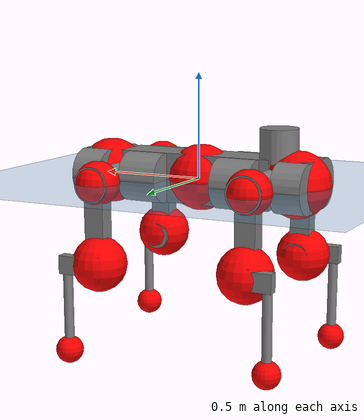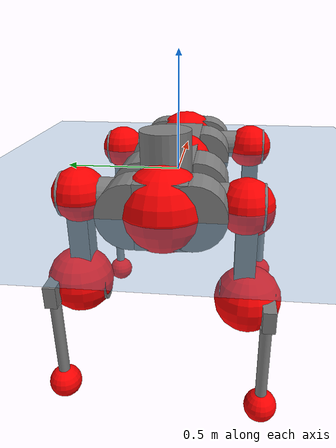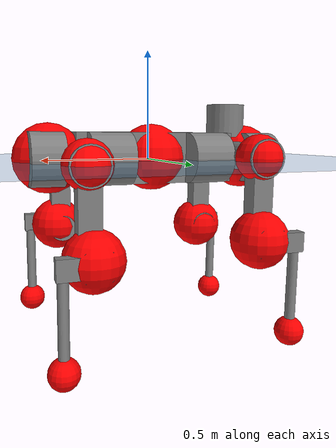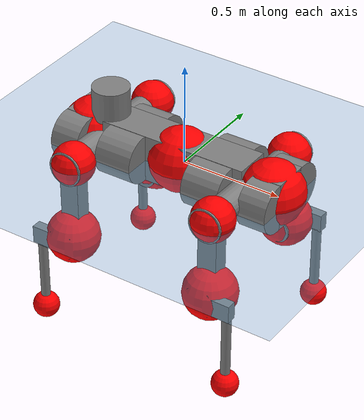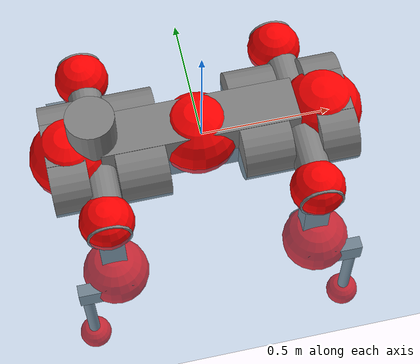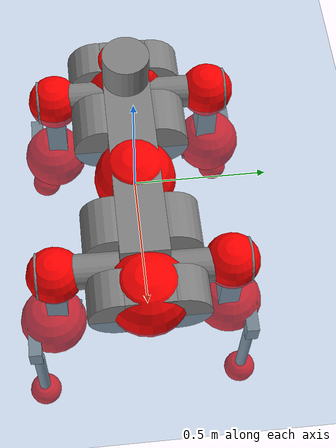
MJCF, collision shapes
<mujoco model="anymal_c">
  <compiler angle="radian" assetdir="assets" balanceinertia="true" inertiafromgeom="false"/>

  <option timestep="0.005" density="1.2" viscosity="2e-05"/>

  <size nkey="1"/>

  <visual>
    <quality shadowsize="8192"/>
    <map shadowclip="0.5"/>
  </visual>

  <default>
    <default class="/">
      <material specular="0" shininess="0.25"/>
      <geom contype="0" conaffinity="0" group="1" solref="-1000 -80"/>
      <site size="0.01 0.005 0.005" group="5"/>
      <general forcelimited="true" forcerange="-80 80" biastype="affine" gainprm="80" biasprm="0 -80 -2"/>
      <default class="anymal_c">
        <joint armature="0.01" damping="0.01" frictionloss="0.1"/>
        <default class="visual">
          <geom type="mesh" group="2"/>
          <default class="visual_zflip"/>
        </default>
        <default class="collision">
          <geom type="cylinder" group="3"/>
          <default class="foot">
            <geom size="0.03 0 0" type="sphere" condim="6" priority="1" friction="0.8 0.02 0.01" solimp="0.015 1 0.03"/>
          </default>
        </default>
      </default>
      <default class="reward_collision_sphere">
        <geom group="5" rgba="1 0 0 1"/>
      </default>
    </default>
  </default>

  <asset>
    <texture type="skybox" colorspace="auto" name="//unnamed_texture_0" builtin="gradient" rgb1="0.95 0.95 0.95" rgb2="0.95 0.95 0.95" width="100" height="600"/>
    <texture type="2d" colorspace="auto" name="texplane" builtin="checker" rgb1="0.345 0.575 0.748" rgb2="0.345 0.575 0.748" markrgb="1 1 1" width="512" height="512"/>
    <texture type="2d" colorspace="linear" name="base" file="base.png"/>
    <texture type="2d" colorspace="linear" name="top_shell" file="top_shell.png"/>
    <texture type="2d" colorspace="linear" name="bottom_shell" file="bottom_shell.png"/>
    <texture type="2d" colorspace="linear" name="remote" file="remote.png"/>
    <texture type="2d" colorspace="linear" name="hatch" file="hatch.png"/>
    <texture type="2d" colorspace="linear" name="handle" file="handle.png"/>
    <texture type="2d" colorspace="linear" name="face" file="face.png"/>
    <texture type="2d" colorspace="linear" name="battery" file="battery.png"/>
    <texture type="2d" colorspace="linear" name="lidar_cage" file="lidar_cage.png"/>
    <texture type="2d" colorspace="linear" name="depth_camera" file="depth_camera.png"/>
    <texture type="2d" colorspace="linear" name="wide_angle_camera" file="wide_angle_camera.png"/>
    <texture type="2d" colorspace="linear" name="lidar" file="lidar.png"/>
    <texture type="2d" colorspace="linear" name="drive" file="drive.png"/>
    <texture type="2d" colorspace="linear" name="hip_l" file="hip_l.png"/>
    <texture type="2d" colorspace="linear" name="shank_l" file="shank_l.png"/>
    <texture type="2d" colorspace="linear" name="foot" file="foot.png"/>
    <texture type="2d" colorspace="linear" name="thigh" file="thigh.png"/>
    <texture type="2d" colorspace="linear" name="shank_r" file="shank_r.png"/>
    <texture type="2d" colorspace="linear" name="hip_r" file="hip_r.png"/>
    <material name="MatPlane" class="/" texture="texplane" texuniform="true" texrepeat="2 2" specular="0.9" shininess="0.5"/>
    <material name="black_plastic" class="/" rgba="0.007 0.007 0.007 1"/>
    <material name="green" class="/" rgba="0.052 0.178 0.033 1"/>
    <material name="red" class="/" rgba="0.178 0.006 0.005 1"/>
    <material name="yellow" class="/" rgba="0.178 0.119 0.006 1"/>
    <material name="lwl" class="/" rgba="0.8 0.8 0.8 1"/>
    <material name="base" class="/" texture="base"/>
    <material name="top_shell" class="/" texture="top_shell"/>
    <material name="bottom_shell" class="/" texture="bottom_shell"/>
    <material name="hip_l" class="/" texture="hip_l"/>
    <material name="thigh" class="/" texture="thigh"/>
    <material name="shank_l" class="/" texture="shank_l"/>
    <material name="foot" class="/" texture="foot"/>
    <material name="hip_r" class="/" texture="hip_r"/>
    <material name="shank" class="/" texture="shank_r"/>
    <material name="hatch" class="/" texture="hatch"/>
    <material name="remote" class="/" texture="remote"/>
    <material name="handle" class="/" texture="handle"/>
    <material name="face" class="/" texture="face"/>
    <material name="depth_camera" class="/" texture="depth_camera"/>
    <material name="wide_angle_camera" class="/" texture="wide_angle_camera"/>
    <material name="battery" class="/" texture="battery"/>
    <material name="lidar_cage" class="/" texture="lidar_cage"/>
    <material name="lidar" class="/" texture="lidar"/>
    <material name="drive" class="/" texture="drive"/>
    <mesh name="base_0" class="/" file="base_0.obj"/>
    <mesh name="base_1" class="/" file="base_1.obj"/>
    <mesh name="base_2" class="/" file="base_2.obj"/>
    <mesh name="base_3" class="/" file="base_3.obj"/>
    <mesh name="base_4" class="/" file="base_4.obj"/>
    <mesh name="base_5" class="/" file="base_5.obj"/>
    <mesh name="top_shell" class="/" file="top_shell.obj"/>
    <mesh name="bottom_shell" class="/" file="bottom_shell.obj"/>
    <mesh name="remote" class="/" file="remote.obj"/>
    <mesh name="handle" class="/" file="handle.obj"/>
    <mesh name="face" class="/" file="face.obj"/>
    <mesh name="wide_angle_camera" class="/" file="wide_angle_camera.obj"/>
    <mesh name="depth_camera" class="/" file="depth_camera.obj"/>
    <mesh name="battery" class="/" file="battery.obj"/>
    <mesh name="lidar_cage" class="/" file="lidar_cage.obj"/>
    <mesh name="lidar" class="/" file="lidar.obj"/>
    <mesh name="drive" class="/" file="drive.obj"/>
    <mesh name="hip_l" class="/" file="hip_l.obj"/>
    <mesh name="thigh" class="/" file="thigh.obj"/>
    <mesh name="shank_l" class="/" file="shank_l.obj"/>
    <mesh name="foot" class="/" file="foot.obj"/>
    <mesh name="hip_r" class="/" file="hip_r.obj"/>
    <mesh name="hatch" class="/" file="hatch.obj"/>
    <mesh name="shank_r" class="/" file="shank_r.obj"/>
  </asset>

  <worldbody>
    <geom name="floor" class="/" size="100 100 0.125" type="plane" group="0" material="MatPlane"/>
    <light name="toplight_shadow" class="/" pos="0 0 5" dir="0.0990148 0.0990148 -0.990148" type="directional" ambient="0.04 0.04 0.04" diffuse="0.55 0.55 0.55" specular="0.12 0.12 0.12"/>
    <light name="toplight_fill" class="/" pos="0 0 5" dir="0.0990148 0.0990148 -0.990148" type="directional" castshadow="false" ambient="0.04 0.04 0.04" diffuse="0.3 0.3 0.3" specular="0.08 0.08 0.08"/>
    <body name="trunk" childclass="anymal_c" pos="-0.0164356 0.00218488 0.0087336" quat="0.999972 -0.00665586 -0.00296881 0.00172545">
      <inertial pos="0.0184199 -0.00841605 0.0702143" quat="0.485606 0.504948 0.494332 0.514637" mass="46.5378" diaginertia="0.842561 4.36399 0.716916"/>
      <joint name="//unnamed_joint_0" type="free" armature="0" damping="0" frictionloss="0"/>
      <geom name="//unnamed_geom_1" class="visual" material="green" mesh="base_0"/>
      <geom name="//unnamed_geom_2" class="visual" material="yellow" mesh="base_1"/>
      <geom name="//unnamed_geom_3" class="visual" material="red" mesh="base_2"/>
      <geom name="//unnamed_geom_4" class="visual" material="black_plastic" mesh="base_3"/>
      <geom name="//unnamed_geom_5" class="visual" material="lwl" mesh="base_4"/>
      <geom name="//unnamed_geom_6" class="visual" material="base" mesh="base_5"/>
      <geom name="trunk_1" class="collision" size="0.378642 0.0913964 0.11751" type="box"/>
      <geom name="trunk_2" class="collision" size="0.11751 0.0946605" pos="0.234989 0.106083 0" quat="0.707107 0 0.707107 0"/>
      <geom name="trunk_3" class="collision" size="0.11751 0.0946605" pos="-0.234989 0.106083 0" quat="0.707107 0 0.707107 0"/>
      <geom name="trunk_4" class="collision" size="0.11751 0.0946605" pos="0.234989 -0.106083 0" quat="0.707107 0 0.707107 0"/>
      <geom name="trunk_5" class="collision" size="0.11751 0.0946605" pos="-0.234989 -0.106083 0" quat="0.707107 0 0.707107 0"/>
      <geom name="//unnamed_geom_12" class="visual" material="top_shell" mesh="top_shell"/>
      <geom name="//unnamed_geom_13" class="visual" material="bottom_shell" mesh="bottom_shell"/>
      <geom name="//unnamed_geom_14" class="visual" material="remote" mesh="remote"/>
      <geom name="//unnamed_geom_15" class="visual" material="handle" mesh="handle"/>
      <geom name="//unnamed_geom_16" class="visual" pos="0.44783 0 0" quat="1 0 0 0" material="face" mesh="face"/>
      <geom name="trunk_6" class="collision" size="0.0718114 0.0913964 0.11751" pos="0.507252 0 0" type="box"/>
      <geom name="//unnamed_geom_18" class="collision" size="0.11751 0.0718114" pos="0.507252 0.106083 0" quat="0.707107 0 0.707107 0"/>
      <geom name="//unnamed_geom_19" class="collision" size="0.11751 0.0718114" pos="0.507252 -0.106083 0" quat="0.707107 0 0.707107 0"/>
      <geom name="//unnamed_geom_20" class="visual" pos="0.498781 0 -0.0404054" quat="0.965926 0 0.258819 0" material="depth_camera" mesh="depth_camera"/>
      <geom name="//unnamed_geom_21" class="visual" pos="0.55425 0 0.0197769" material="wide_angle_camera" mesh="wide_angle_camera"/>
      <geom name="//unnamed_geom_22" class="visual_zflip" pos="-0.44783 0 0" quat="0 0 0 1" material="face" mesh="face"/>
      <geom name="trunk_7" class="collision" size="0.0718114 0.0913964 0.11751" pos="-0.507252 0 0" quat="0 0 0 1" type="box"/>
      <geom name="//unnamed_geom_24" class="collision" size="0.11751 0.0718114" pos="-0.507252 -0.106083 0" quat="0 -0.707107 0 0.707107"/>
      <geom name="//unnamed_geom_25" class="collision" size="0.11751 0.0718114" pos="-0.507252 0.106083 0" quat="0 -0.707107 0 0.707107"/>
      <geom name="//unnamed_geom_26" class="visual" pos="-0.498781 0 -0.0404054" quat="0 -0.258819 0 0.965926" material="depth_camera" mesh="depth_camera"/>
      <geom name="//unnamed_geom_27" class="visual_zflip" pos="-0.55425 0 0.0197769" quat="0 0 0 1" material="wide_angle_camera" mesh="wide_angle_camera"/>
      <geom name="//unnamed_geom_28" class="visual" material="battery" mesh="battery"/>
      <geom name="//unnamed_geom_29" class="visual" pos="0 0.121592 0.0365487" quat="0.683013 -0.183013 0.183013 0.683013" material="depth_camera" mesh="depth_camera"/>
      <geom name="//unnamed_geom_30" class="visual" pos="0 -0.121592 0.0365487" quat="0.683013 0.183013 0.183013 -0.683013" material="depth_camera" mesh="depth_camera"/>
      <geom name="//unnamed_geom_31" class="visual" pos="-0.393269 0 0.097101" quat="1 0 0 0" material="lidar_cage" mesh="lidar_cage"/>
      <geom name="trunk_8" class="collision" size="0.0913964 0.0783397" pos="-0.393269 0 0.176367"/>
      <geom name="//unnamed_geom_33" class="visual" pos="-0.393269 0.000170926 0.187861" quat="0.707107 0 0 -0.707107" material="lidar" mesh="lidar"/>
      <geom name="//unnamed_geom_34" class="visual" pos="0.324015 0.15754 3.35297e-09" quat="0.258819 0.965926 0 0" material="drive" mesh="drive"/>
      <geom name="//unnamed_geom_35" class="visual" pos="0.324015 -0.15754 -3.35297e-09" quat="0.258819 -0.965926 0 0" material="drive" mesh="drive"/>
      <geom name="//unnamed_geom_36" class="visual" pos="-0.324015 0.15754 -3.35297e-09" quat="0 0 0.965926 -0.258819" material="drive" mesh="drive"/>
      <geom name="//unnamed_geom_37" class="visual" pos="-0.324015 -0.15754 3.35297e-09" quat="0 0 -0.965926 -0.258819" material="drive" mesh="drive"/>
      <geom name="//unnamed_geom_38" class="visual" pos="0.125327 0 0.0964405" quat="1 0 0 0" material="hatch" mesh="hatch"/>
      <geom name="//unnamed_geom_39" class="reward_collision_sphere" size="0.156679"/>
      <geom name="//unnamed_geom_40" class="reward_collision_sphere" size="0.156679" pos="0.486184 0 0"/>
      <geom name="//unnamed_geom_41" class="reward_collision_sphere" size="0.156679" pos="-0.486184 0 0"/>
      <site name="imu" pos="0.281063 -0.0356249 -0.0115233" size="0.0130566"/>
      <camera name="track" pos="0 -3.03095 0" quat="0.707107 0.707107 0 0" mode="trackcom"/>
      <camera name="ego_camera" pos="0.486184 0 -0.0528441" quat="-0.5 -0.5 0.5 0.5"/>
      <body name="LF_HIP" pos="0.324192 0.163673 -0.00796057" quat="0.262026 0.965057 -0.0023067 0.0013017">
        <inertial pos="0.0562138 -0.0112049 -0.00744407" quat="-0.116643 0.716545 -0.134374 0.674464" mass="6.43428" diaginertia="0.00641156 0.0325616 0.0131426"/>
        <joint name="LF_HAA" pos="0 0 0" axis="0.996723 -0.00819906 0.0804783" stiffness="0.0370502" range="-1.03876 0.551284" armature="0.0136787" damping="0" frictionloss="0.13425"/>
        <geom name="//unnamed_geom_42" class="visual" pos="0 0.00019724 -3.23965e-05" quat="0.258819 -0.965926 0 0" material="hip_l" mesh="hip_l"/>
        <geom name="//unnamed_geom_43" class="visual" pos="0.0647165 -0.0840771 -0.0471042" quat="0.183013 -0.683013 0.683013 0.183013" material="drive" mesh="drive"/>
        <geom name="//unnamed_geom_44" class="collision" size="0.0652831 0.0913964" pos="0.0647165 -0.0181248 -0.00912221" quat="-0.353553 -0.612372 0.612372 -0.353553"/>
        <body name="LF_THIGH" pos="0.0556464 -0.112564 -0.0651952" quat="0.187273 -0.685369 0.680579 0.178914">
          <inertial pos="0.021549 0.0108841 -0.309785" quat="0.993102 -0.00378214 -0.0822203 0.0835071" mass="8.04674" diaginertia="0.0454333 0.266889 0.0152772"/>
          <joint name="LF_HFE" pos="0 0 0" axis="0.999404 0.0287824 0.0190414" stiffness="0.0835673" range="-3.30857 3.13691" armature="0.0185603" damping="0.00557446" frictionloss="0.176464"/>
          <geom name="//unnamed_geom_45" class="visual" pos="-0.00865612 -1.364e-05 0" quat="0.707107 0 0 -0.707107" material="thigh" mesh="thigh"/>
          <geom name="//unnamed_geom_46" class="collision" size="0.0848681 0.0522265" pos="0.0432164 0 0" quat="0.5 0.5 -0.5 -0.5"/>
          <geom name="//unnamed_geom_47" class="collision" size="0.0489623 0.0391699 0.184508" pos="0.0324123 0 -0.18669" quat="0.707107 0 0 -0.707107" type="box"/>
          <geom name="//unnamed_geom_48" class="visual" pos="0.108365 0 -0.376514" quat="1 0 0 0" material="drive" mesh="drive"/>
          <geom name="//unnamed_geom_49" class="collision" size="0.0652831 0.0913964" pos="0.0327364 0 -0.376514" quat="0.707107 0 0.707107 0"/>
          <geom name="//unnamed_geom_50" class="reward_collision_sphere" size="0.104453" pos="0.0270102 0 0"/>
          <body name="LF_SHANK" pos="0.105186 0.0149309 -0.376535" quat="0.999986 -0.00241432 -0.00305346 -0.00360857">
            <inertial pos="0.0190664 -0.0928862 -0.11775" quat="0.991136 -0.121351 -0.03546 -0.0408215" mass="1.24901" diaginertia="0.0133299 0.0504446 0.0032777"/>
            <joint name="LF_KFE" pos="0 0 0" axis="0.999376 -0.0343871 -0.00810687" range="-2.84401 3.10241" armature="0.00747079" damping="0.0797599" frictionloss="0.0692772"/>
            <geom name="//unnamed_geom_51" class="visual" pos="-0.00282257 -0.0150501 0" quat="0.707107 0 0 -0.707107" material="shank_l" mesh="shank_l"/>
            <geom name="LF_kfe_act" class="collision" size="0.0783397 0.0261132" pos="0.0216082 0 0" quat="0.5 0.5 -0.5 -0.5"/>
            <geom name="//unnamed_geom_53" class="collision" size="0.0750743 0.0440661 0.0248076" pos="0.0216082 -0.0871383 0" quat="0.5 0.5 -0.5 -0.5" type="box"/>
            <geom name="//unnamed_geom_54" class="visual" pos="0.0141 -0.138136 -0.446493" quat="0.382683 0 0 -0.92388" material="foot" mesh="foot"/>
            <geom name="LF_calf" class="collision" size="0.0228491 0.184427" pos="0.0140993 -0.133286 -0.223246" quat="0.707107 0 0 -0.707107"/>
            <geom name="LF_foot" class="foot" size="0.0295651" pos="0.0140993 -0.133286 -0.416768" quat="0.707107 0 0 -0.707107"/>
            <geom name="//unnamed_geom_57" class="reward_collision_sphere" size="0.130566" pos="-0.0540205 0 0"/>
            <geom name="//unnamed_geom_58" class="reward_collision_sphere" size="0.0652831" pos="0.0140993 -0.133286 -0.416768"/>
            <site name="LF_foot" class="foot" pos="0.0140993 -0.133286 -0.416768" quat="0.707107 0 0 -0.707107" size="0.0130566"/>
          </body>
        </body>
      </body>
      <body name="RF_HIP" pos="0.320594 -0.163783 0.0150883" quat="0.257383 -0.96629 0.00597165 0.00113603">
        <inertial pos="0.0520149 0.037302 -0.0116182" quat="0.126581 0.722091 0.0929842 0.673732" mass="6.22282" diaginertia="0.0111688 0.0442327 0.0169003"/>
        <joint name="RF_HAA" pos="0 0 0" axis="0.998869 -0.0235999 -0.041272" stiffness="0.0275105" range="-0.628102 0.734806" armature="0.00930456" damping="0" frictionloss="0.21926"/>
        <geom name="//unnamed_geom_59" class="visual" pos="0 -0.000197238 -3.23964e-05" quat="0.258819 0.965926 0 0" material="hip_r" mesh="hip_r"/>
        <geom name="//unnamed_geom_60" class="visual" pos="0.0647165 0.0840771 -0.0471042" quat="0.183013 0.683013 0.683013 -0.183013" material="drive" mesh="drive"/>
        <geom name="//unnamed_geom_61" class="collision" size="0.0652831 0.0913964" pos="0.0647165 0.0181248 -0.00912221" quat="-0.353553 0.612372 0.612372 0.353553"/>
        <body name="RF_THIGH" pos="0.0653047 0.126221 -0.0571039" quat="0.182524 0.682896 0.683303 -0.182852">
          <inertial pos="0.0235037 0.0124412 -0.321885" quat="0.988278 -0.0547819 -0.0982854 0.103181" mass="6.58898" diaginertia="0.0511108 0.287722 0.0155896"/>
          <joint name="RF_HFE" pos="0 0 0" axis="0.999998 0.00191415 -0.00110035" stiffness="0.0500535" range="-3.07362 2.88073" armature="0.0124734" damping="0.0327068" frictionloss="0.0762216"/>
          <geom name="//unnamed_geom_62" class="visual" pos="-0.00865612 -1.364e-05 0" quat="0.707107 0 0 -0.707107" material="thigh" mesh="thigh"/>
          <geom name="//unnamed_geom_63" class="collision" size="0.0848681 0.0522265" pos="0.0432164 0 0" quat="0.5 0.5 0.5 0.5"/>
          <geom name="//unnamed_geom_64" class="collision" size="0.0489623 0.0391699 0.184508" pos="0.0324123 0 -0.18669" quat="0.707107 0 0 0.707107" type="box"/>
          <geom name="//unnamed_geom_65" class="visual" pos="0.108365 0 -0.376514" quat="1 0 0 0" material="drive" mesh="drive"/>
          <geom name="//unnamed_geom_66" class="collision" size="0.0652831 0.0913964" pos="0.0327364 0 -0.376514" quat="0.707107 0 0.707107 0"/>
          <geom name="//unnamed_geom_67" class="reward_collision_sphere" size="0.104453" pos="0.0270102 0 0"/>
          <body name="RF_SHANK" pos="0.109355 0.0128711 -0.36979" quat="1 0.000494444 0.000132552 -9.28039e-05">
            <inertial pos="0.00585349 0.0908311 -0.107216" quat="0.993734 0.0860766 -0.0662514 0.0263619" mass="1.34988" diaginertia="0.0149661 0.0748872 0.00522868"/>
            <joint name="RF_KFE" pos="0 0 0" axis="0.99702 -0.0532917 0.0557768" stiffness="0.0690901" range="-3.17608 2.90679" armature="0.0177279" damping="0" frictionloss="0.181345"/>
            <geom name="//unnamed_geom_68" class="visual" pos="-0.00282255 0.0150501 0" quat="0.707107 0 0 0.707107" material="shank" mesh="shank_r"/>
            <geom name="RF_kfe_act" class="collision" size="0.0783397 0.0261132" pos="0.0216082 0 0" quat="0.5 0.5 0.5 0.5"/>
            <geom name="//unnamed_geom_70" class="collision" size="0.0750743 0.0440661 0.0248076" pos="0.0216082 0.0871383 0" quat="0.5 0.5 0.5 0.5" type="box"/>
            <geom name="//unnamed_geom_71" class="visual" pos="0.0140987 0.138136 -0.446493" quat="0.382683 0 0 0.92388" material="foot" mesh="foot"/>
            <geom name="RF_calf" class="collision" size="0.0228491 0.184427" pos="0.0140993 0.133286 -0.223246" quat="0.707107 0 0 0.707107"/>
            <geom name="RF_foot" class="foot" size="0.0482709" pos="0.0140993 0.133286 -0.416768" quat="0.707107 0 0 0.707107"/>
            <geom name="//unnamed_geom_74" class="reward_collision_sphere" size="0.130566" pos="-0.0540205 0 0"/>
            <geom name="//unnamed_geom_75" class="reward_collision_sphere" size="0.0652831" pos="0.0140993 0.133286 -0.416768"/>
            <site name="RF_foot" class="foot" pos="0.0140993 0.133286 -0.416768" quat="0.707107 0 0 0.707107" size="0.0130566"/>
          </body>
        </body>
      </body>
      <body name="LH_HIP" pos="-0.323615 0.157519 0.0121339" quat="0.000329329 3.65555e-05 0.965853 -0.259092">
        <inertial pos="0.0538923 0.00769256 0.0010951" quat="0.174663 0.626449 0.17062 0.740232" mass="4.70314" diaginertia="0.0078349 0.0373863 0.0101565"/>
        <joint name="LH_HAA" pos="0 0 0" axis="0.999993 0.00356413 -0.00064194" range="-0.419472 0.924664" armature="0.020978" damping="0.0346106" frictionloss="0.0371888"/>
        <geom name="//unnamed_geom_76" class="visual" pos="0 -0.000197238 -3.23964e-05" quat="-0.258819 -0.965926 0 0" material="hip_r" mesh="hip_r"/>
        <geom name="//unnamed_geom_77" class="visual" pos="0.0647165 0.0840771 -0.0471042" quat="0.183013 0.683013 0.683013 -0.183013" material="drive" mesh="drive"/>
        <geom name="//unnamed_geom_78" class="collision" size="0.0652831 0.0913964" pos="0.0647165 0.0181248 -0.00912221" quat="-0.353553 0.612372 0.612372 0.353553"/>
        <body name="LH_THIGH" pos="0.0640306 0.123915 -0.0696177" quat="0.184398 0.682772 0.682644 -0.183891">
          <inertial pos="0.0342739 -0.000677597 -0.328731" quat="0.988745 0.0126149 -0.0922763 0.117084" mass="5.09961" diaginertia="0.040457 0.210025 0.0134556"/>
          <joint name="LH_HFE" pos="0 0 0" axis="0.998656 0.00289641 0.0517524" range="-3.17958 3.09646" armature="0.00560574" damping="0.0620437" frictionloss="0.135671"/>
          <geom name="//unnamed_geom_79" class="visual" pos="-0.00865612 -1.364e-05 0" quat="0.707107 0 0 -0.707107" material="thigh" mesh="thigh"/>
          <geom name="//unnamed_geom_80" class="collision" size="0.0848681 0.0522265" pos="0.0432164 0 0" quat="0.5 0.5 -0.5 -0.5"/>
          <geom name="//unnamed_geom_81" class="collision" size="0.0489623 0.0391699 0.184508" pos="0.0324123 0 -0.18669" quat="0.707107 0 0 -0.707107" type="box"/>
          <geom name="//unnamed_geom_82" class="visual" pos="0.108365 0 -0.376514" quat="1 0 0 0" material="drive" mesh="drive"/>
          <geom name="//unnamed_geom_83" class="collision" size="0.0652831 0.0913964" pos="0.0327364 0 -0.376514" quat="0.707107 0 0.707107 0"/>
          <geom name="//unnamed_geom_84" class="reward_collision_sphere" size="0.104453" pos="0.0270102 0 0"/>
          <body name="LH_SHANK" pos="0.108395 -0.000949683 -0.361472" quat="0.999997 -0.000351867 0.00176901 -0.00155493">
            <inertial pos="0.0129709 0.076828 -0.108718" quat="0.988321 0.152273 -0.00436272 -0.00403716" mass="1.19402" diaginertia="0.0153397 0.0659685 0.0049522"/>
            <joint name="LH_KFE" pos="0 0 0" axis="0.999785 -0.0202018 -0.00472523" stiffness="0.0825505" range="-3.16123 2.97177" armature="0.00712919" damping="0.059135" frictionloss="0.0280364"/>
            <geom name="//unnamed_geom_85" class="visual" pos="-0.00282255 0.0150501 0" quat="-0.707107 0 0 -0.707107" material="shank" mesh="shank_r"/>
            <geom name="LH_kfe_act" class="collision" size="0.0783397 0.0261132" pos="0.0216082 0 0" quat="0.5 0.5 -0.5 -0.5"/>
            <geom name="//unnamed_geom_87" class="collision" size="0.0750743 0.0440661 0.0248076" pos="0.0216082 0.0871383 0" quat="0.5 0.5 -0.5 -0.5" type="box"/>
            <geom name="//unnamed_geom_88" class="visual" pos="0.0140987 0.138136 -0.446493" quat="-0.382683 0 0 -0.92388" material="foot" mesh="foot"/>
            <geom name="LH_calf" class="collision" size="0.0228491 0.184427" pos="0.0140993 0.133286 -0.223246" quat="0.707107 0 0 -0.707107"/>
            <geom name="LH_foot" class="foot" size="0.0525122" pos="0.0140993 0.133286 -0.416768" quat="0.707107 0 0 -0.707107"/>
            <geom name="//unnamed_geom_91" class="reward_collision_sphere" size="0.130566" pos="-0.0540205 0 0"/>
            <geom name="//unnamed_geom_92" class="reward_collision_sphere" size="0.0652831" pos="0.0140993 0.133286 -0.416768"/>
            <site name="LH_foot" class="foot" pos="0.0140993 0.133286 -0.416768" quat="0.707107 0 0 -0.707107" size="0.0130566"/>
          </body>
        </body>
      </body>
      <body name="RH_HIP" pos="-0.330994 -0.14835 0.00414413" quat="-0.00631522 -0.00412403 -0.965459 -0.260446">
        <inertial pos="0.0454239 -0.0352712 0.00472992" quat="-0.175698 0.719325 -0.153514 0.65432" mass="6.29658" diaginertia="0.00875445 0.0402058 0.0137571"/>
        <joint name="RH_HAA" pos="0 0 0" axis="0.996736 -0.0709149 -0.0385706" range="-0.862396 0.413346" armature="0.0192214" damping="0.0299893" frictionloss="0.10136"/>
        <geom name="//unnamed_geom_93" class="visual" pos="0 0.00019724 -3.23965e-05" quat="-0.258819 0.965926 0 0" material="hip_l" mesh="hip_l"/>
        <geom name="//unnamed_geom_94" class="visual" pos="0.0647165 -0.0840771 -0.0471042" quat="-0.183013 0.683013 -0.683013 -0.183013" material="drive" mesh="drive"/>
        <geom name="//unnamed_geom_95" class="collision" size="0.0652831 0.0913964" pos="0.0647165 -0.0181248 -0.00912221" quat="0.353553 0.612372 -0.612372 0.353553"/>
        <body name="RH_THIGH" pos="0.0704225 -0.107629 -0.0394954" quat="-0.183268 0.682531 -0.683438 -0.182967">
          <inertial pos="0.0366387 1.57754e-05 -0.325382" quat="0.99298 -0.00605619 -0.0817927 0.0852306" mass="8.03594" diaginertia="0.0469825 0.206951 0.0169867"/>
          <joint name="RH_HFE" pos="0 0 0" axis="0.999736 0.0147144 -0.0176704" range="-3.12517 2.8651" armature="0.0149229" damping="0.0078517" frictionloss="0.100958"/>
          <geom name="//unnamed_geom_96" class="visual" pos="-0.00865612 -1.364e-05 0" quat="0.707107 0 0 -0.707107" material="thigh" mesh="thigh"/>
          <geom name="//unnamed_geom_97" class="collision" size="0.0848681 0.0522265" pos="0.0432164 0 0" quat="0.5 0.5 0.5 0.5"/>
          <geom name="//unnamed_geom_98" class="collision" size="0.0489623 0.0391699 0.184508" pos="0.0324123 0 -0.18669" quat="0.707107 0 0 0.707107" type="box"/>
          <geom name="//unnamed_geom_99" class="visual" pos="0.108365 0 -0.376514" quat="1 0 0 0" material="drive" mesh="drive"/>
          <geom name="//unnamed_geom_100" class="collision" size="0.0652831 0.0913964" pos="0.0327364 0 -0.376514" quat="0.707107 0 0.707107 0"/>
          <geom name="//unnamed_geom_101" class="reward_collision_sphere" size="0.104453" pos="0.0270102 0 0"/>
          <body name="RH_SHANK" pos="0.104605 -0.00110465 -0.3854" quat="0.999999 -0.000351848 -0.000523882 -0.000894579">
            <inertial pos="0.0178227 -0.0960875 -0.105872" quat="0.989786 -0.126062 -0.0374574 -0.0550352" mass="1.33623" diaginertia="0.0134737 0.0724169 0.00373708"/>
            <joint name="RH_KFE" pos="0 0 0" axis="0.99736 -0.0667964 -0.0284805" stiffness="0.000146" range="-2.99726 3.14557" armature="0.0167844" damping="0" frictionloss="0.168483"/>
            <geom name="//unnamed_geom_102" class="visual" pos="-0.00282257 -0.0150501 0" quat="0.707107 0 0 -0.707107" material="shank_l" mesh="shank_l"/>
            <geom name="RH_kfe_act" class="collision" size="0.0783397 0.0261132" pos="0.0216082 0 0" quat="0.5 0.5 0.5 0.5"/>
            <geom name="//unnamed_geom_104" class="collision" size="0.0750743 0.0440661 0.0248076" pos="0.0216082 -0.0871383 0" quat="0.5 0.5 0.5 0.5" type="box"/>
            <geom name="//unnamed_geom_105" class="visual" pos="0.0141 -0.138136 -0.446493" quat="0.382683 0 0 -0.92388" material="foot" mesh="foot"/>
            <geom name="RH_calf" class="collision" size="0.0228491 0.184427" pos="0.0140993 -0.133286 -0.223246" quat="0.707107 0 0 0.707107"/>
            <geom name="RH_foot" class="foot" size="0.0591847" pos="0.0140993 -0.133286 -0.416768" quat="0.707107 0 0 0.707107"/>
            <geom name="//unnamed_geom_108" class="reward_collision_sphere" size="0.130566" pos="-0.0540205 0 0"/>
            <geom name="//unnamed_geom_109" class="reward_collision_sphere" size="0.0652831" pos="0.0140993 -0.133286 -0.416768"/>
            <site name="RH_foot" class="foot" pos="0.0140993 -0.133286 -0.416768" quat="0.707107 0 0 0.707107" size="0.0130566"/>
          </body>
        </body>
      </body>
    </body>
  </worldbody>

  <contact>
    <pair class="/" geom1="floor" geom2="LF_foot" name="//unnamed_contact_0"/>
    <pair class="/" geom1="floor" geom2="RF_foot" name="//unnamed_contact_1"/>
    <pair class="/" geom1="floor" geom2="LH_foot" name="//unnamed_contact_2"/>
    <pair class="/" geom1="floor" geom2="RH_foot" name="//unnamed_contact_3"/>
  </contact>

  <actuator>
    <general name="LF_HAA" class="/" joint="LF_HAA" forcerange="-105.435 105.435" gainprm="78.4272" biasprm="0 -78.4272 -3.35891"/>
    <general name="LF_HFE" class="/" joint="LF_HFE" forcerange="-141.576 141.576" gainprm="78.4272" biasprm="0 -78.4272 -3.35891"/>
    <general name="LF_KFE" class="/" joint="LF_KFE" forcerange="-117.651 117.651" gainprm="78.4272" biasprm="0 -78.4272 -3.35891"/>
    <general name="RF_HAA" class="/" joint="RF_HAA" forcerange="-110.464 110.464" gainprm="78.4272" biasprm="0 -78.4272 -3.35891"/>
    <general name="RF_HFE" class="/" joint="RF_HFE" forcerange="-67.8016 67.8016" gainprm="78.4272" biasprm="0 -78.4272 -3.35891"/>
    <general name="RF_KFE" class="/" joint="RF_KFE" forcerange="-105.255 105.255" gainprm="78.4272" biasprm="0 -78.4272 -3.35891"/>
    <general name="LH_HAA" class="/" joint="LH_HAA" forcerange="-44.0627 44.0627" gainprm="78.4272" biasprm="0 -78.4272 -3.35891"/>
    <general name="LH_HFE" class="/" joint="LH_HFE" forcerange="-140.035 140.035" gainprm="78.4272" biasprm="0 -78.4272 -3.35891"/>
    <general name="LH_KFE" class="/" joint="LH_KFE" forcerange="-164.825 164.825" gainprm="78.4272" biasprm="0 -78.4272 -3.35891"/>
    <general name="RH_HAA" class="/" joint="RH_HAA" forcerange="-148.219 148.219" gainprm="78.4272" biasprm="0 -78.4272 -3.35891"/>
    <general name="RH_HFE" class="/" joint="RH_HFE" forcerange="-45.7915 45.7915" gainprm="78.4272" biasprm="0 -78.4272 -3.35891"/>
    <general name="RH_KFE" class="/" joint="RH_KFE" forcerange="-90.8206 90.8206" gainprm="78.4272" biasprm="0 -78.4272 -3.35891"/>
  </actuator>

  <sensor>
    <gyro site="imu" name="imu_angular_velocity"/>
    <velocimeter site="imu" name="imu_linear_velocity"/>
    <framelinvel objtype="site" objname="LF_foot" name="LF_foot_global_linear_velocity"/>
    <framelinvel objtype="site" objname="RF_foot" name="RF_foot_global_linear_velocity"/>
    <framelinvel objtype="site" objname="LH_foot" name="LH_foot_global_linear_velocity"/>
    <framelinvel objtype="site" objname="RH_foot" name="RH_foot_global_linear_velocity"/>
  </sensor>

  <keyframe>
    <key name="home" qpos="0 0 0.55 1 0 0 0 0 0.4 -0.8 0 -0.4 0.8 0 -0.4 0.8 0 0.4 -0.8"/>
  </keyframe>
</mujoco>
